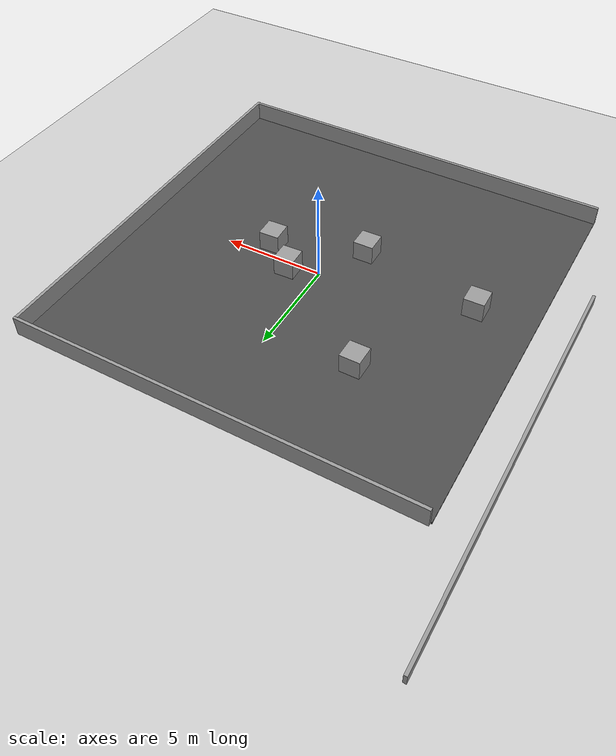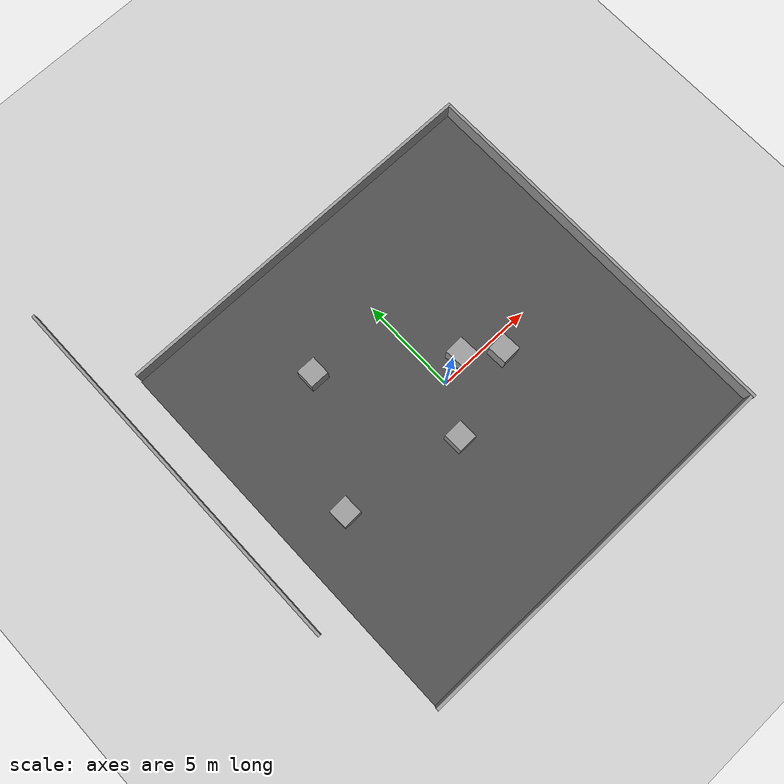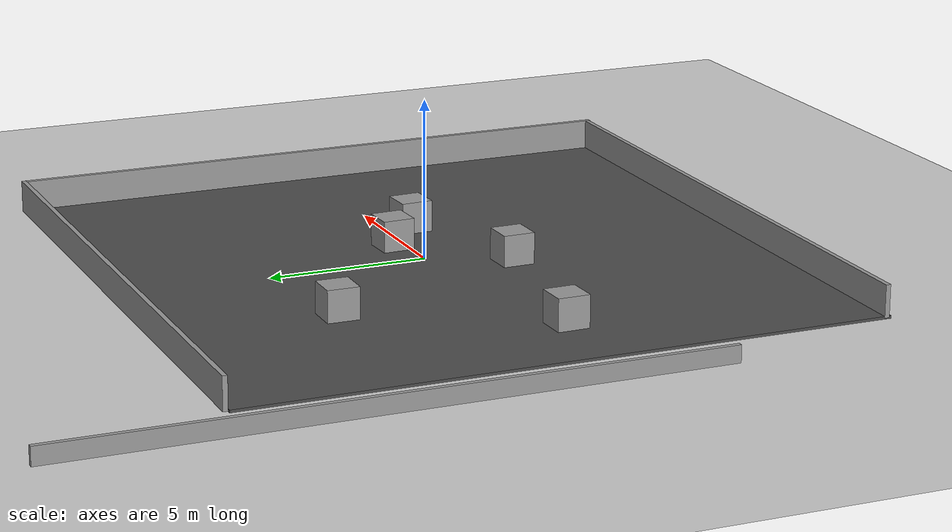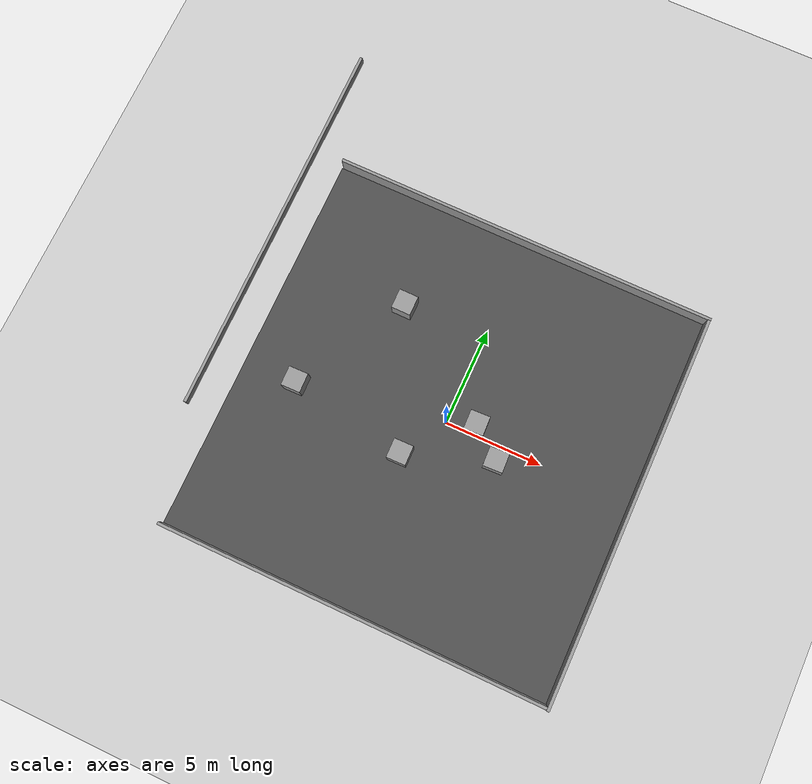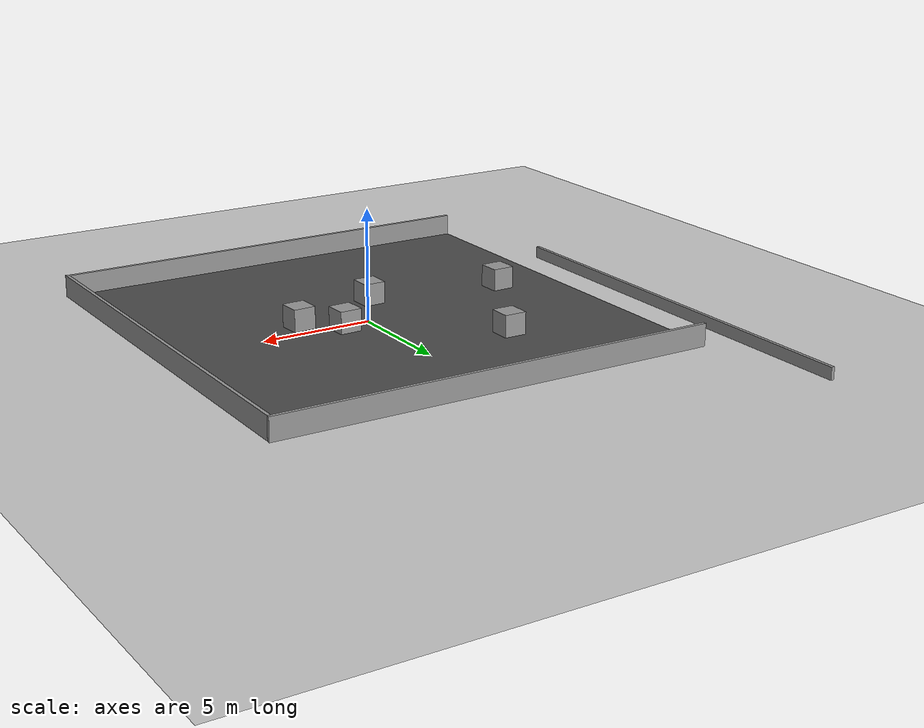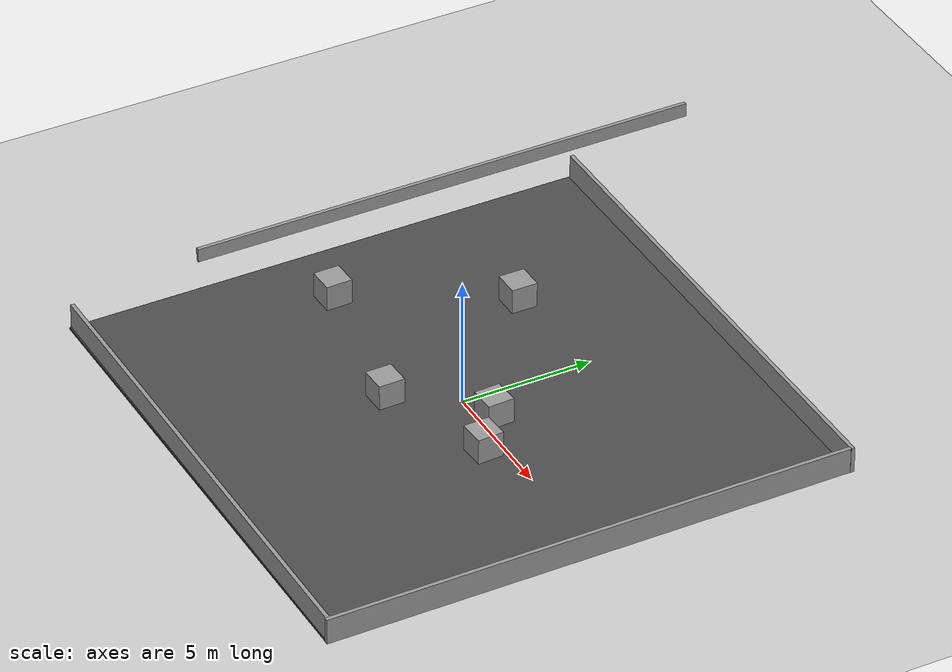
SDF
<sdf version="1.6">
 <world name="default">
  <light name="sun" type="directional">
   <pose>0 0 10 0 -0 0</pose>
   <diffuse>0.8 0.8 0.8 1</diffuse>
   <specular>0.2 0.2 0.2 1</specular>
   <attenuation>
    <range>1000</range>
    <constant>0.9</constant>
    <linear>0.01</linear>
    <quadratic>0.001</quadratic>
   </attenuation>
   <direction>-0.5 0.1 -0.9</direction>
  </light>
  <model name="Wall_01">
   <pose>-5.61799 -1.72271 0 0 0.000841 0</pose>
   <static>1</static>
   <link name="Wall_0">
    <collision name="Wall_0_Collision">
     <geometry><box><size>20 0.15 1</size></box></geometry>
     <pose>-5.61799 -1.72271 0 0 0.000841 0</pose>
    </collision>
    <visual name="Wall_0_Visual">
     <pose>-5.61799 -1.72271 0 0 0.000841 0</pose>
     <geometry><box><size>20 0.15 1</size></box></geometry>
     <material>
      <script><uri>file://media/materials/scripts/gazebo.material</uri><name>Gazebo/Grey</name></script>
      <ambient>1 1 1 1</ambient>
     </material>
    </visual>
    <pose>-4.6 1.725 0 0 0 -1.5708</pose>
   </link>
  </model>
  <model name="ground_plane">
   <static>1</static>
   <link name="link">
    <collision name="collision">
     <geometry><plane><normal>0 0 1</normal><size>100 100</size></plane></geometry>
     <surface><friction><ode><mu>100</mu><mu2>50</mu2></ode></friction></surface>
    </collision>
    <visual name="visual">
     <cast_shadows>0</cast_shadows>
     <geometry><plane><normal>0 0 1</normal><size>100 100</size></plane></geometry>
     <material>
      <script><uri>file://media/materials/scripts/gazebo.material</uri><name>Gazebo/Grey</name></script>
     </material>
    </visual>
    <velocity_decay><linear>0</linear><angular>0</angular></velocity_decay>
   </link>
  </model>
  <physics name="default_physics" default="0" type="ode">
   <max_step_size>0.01</max_step_size>
   <real_time_factor>1</real_time_factor>
   <real_time_update_rate>100</real_time_update_rate>
  </physics>
  <scene><ambient>0.4 0.4 0.4 1</ambient><background>0.7 0.7 0.7 1</background><shadows>1</shadows></scene>
  <model name="asphalt_plane">
   <static>1</static>
   <link name="link">
    <collision name="collision"><geometry><box><size>20 20 0.1</size></box></geometry></collision>
    <visual name="visual">
     <cast_shadows>0</cast_shadows>
     <geometry><box><size>20 20 0.1</size></box></geometry>
     <material>
      <script>
       <uri>model://asphalt_plane/materials/scripts</uri>
       <uri>model://asphalt_plane/materials/textures</uri>
       <name>vrc/asphalt</name>
      </script>
     </material>
    </visual>
    <velocity_decay><linear>0</linear><angular>0</angular></velocity_decay>
   </link>
   <pose>-0.299858 -0.177184 0 0 -0 0</pose>
  </model>
  <gravity>0 0 -9.8</gravity>
  <magnetic_field>6e-06 2.3e-05 -4.2e-05</magnetic_field>
  <atmosphere type="adiabatic"/>
  <spherical_coordinates>
   <surface_model>EARTH_WGS84</surface_model>
   <latitude_deg>0</latitude_deg>
   <longitude_deg>0</longitude_deg>
   <elevation>0</elevation>
   <heading_deg>0</heading_deg>
  </spherical_coordinates>
  <model name="unit_box">
   <pose>-1.37096 -2.30474 0.539033 2.2e-05 -2.5e-05 0.0166</pose>
   <link name="link">
    <inertial>
     <mass>1</mass>
     <inertia>
      <ixx>0.166667</ixx>
      <ixy>0</ixy>
      <ixz>0</ixz>
      <iyy>0.166667</iyy>
      <iyz>0</iyz>
      <izz>0.166667</izz>
     </inertia>
    </inertial>
    <collision name="collision"><geometry><box><size>1 1 1</size></box></geometry></collision>
    <visual name="visual">
     <geometry><box><size>1 1 1</size></box></geometry>
     <material>
      <script><name>Gazebo/Grey</name><uri>file://media/materials/scripts/gazebo.material</uri></script>
     </material>
    </visual>
   </link>
   <plugin name="random" filename="libvelset.so">
    <link>link</link>
    <initial_velocity>0 0.5 0</initial_velocity>
    <velocity_factor>0.5</velocity_factor>
    <update_period>5</update_period>
    <min_x>-10</min_x>
    <max_x>10</max_x>
    <min_y>-10</min_y>
    <max_y>10</max_y>
    <min_z>-1</min_z>
    <max_z>-1</max_z>
   </plugin>
  </model>
  <model name="Wall_01_clone">
   <static>1</static>
   <link name="Wall_0">
    <collision name="Wall_0_Collision">
     <geometry><box><size>20 0.15 1</size></box></geometry>
     <pose>0 0 0.5 0 -0 0</pose>
    </collision>
    <visual name="Wall_0_Visual">
     <pose>0 0 0.5 0 -0 0</pose>
     <geometry><box><size>20 0.15 1</size></box></geometry>
     <material>
      <script><uri>file://media/materials/scripts/gazebo.material</uri><name>Gazebo/Grey</name></script>
      <ambient>1 1 1 1</ambient>
     </material>
    </visual>
    <pose>-4.6 1.725 0 0 0 -1.5708</pose>
   </link>
   <pose>-1.98196 5.28709 0 0 0 -1.57382</pose>
  </model>
  <model name="Wall_01_clone_0">
   <static>1</static>
   <link name="Wall_0">
    <collision name="Wall_0_Collision">
     <geometry><box><size>20 0.15 1</size></box></geometry>
     <pose>0 0 0.5 0 -0 0</pose>
    </collision>
    <visual name="Wall_0_Visual">
     <pose>0 0 0.5 0 -0 0</pose>
     <geometry><box><size>20 0.15 1</size></box></geometry>
     <material>
      <script><uri>file://media/materials/scripts/gazebo.material</uri><name>Gazebo/Grey</name></script>
      <ambient>1 1 1 1</ambient>
     </material>
    </visual>
    <pose>-4.6 1.725 0 0 0 -1.5708</pose>
   </link>
   <pose>14.2708 -1.93121 0 0 0.000841 0</pose>
  </model>
  <model name="Wall_01_clone_clone">
   <static>1</static>
   <link name="Wall_0">
    <collision name="Wall_0_Collision">
     <geometry><box><size>20 0.15 1</size></box></geometry>
     <pose>0 0 0.5 0 -0 0</pose>
    </collision>
    <visual name="Wall_0_Visual">
     <pose>0 0 0.5 0 -0 0</pose>
     <geometry><box><size>20 0.15 1</size></box></geometry>
     <material>
      <script><uri>file://media/materials/scripts/gazebo.material</uri><name>Gazebo/Grey</name></script>
      <ambient>1 1 1 1</ambient>
     </material>
    </visual>
    <pose>-4.6 1.725 0 0 0 -1.5708</pose>
   </link>
   <pose>-2.04393 -14.665 0 0 0 -1.57382</pose>
  </model>
  <model name="unit_box_clone">
   <pose>-4.24548 4.4631 0.539039 3.4e-05 -0 -0.005976</pose>
   <link name="link">
    <inertial>
     <mass>1</mass>
     <inertia>
      <ixx>0.166667</ixx>
      <ixy>0</ixy>
      <ixz>0</ixz>
      <iyy>0.166667</iyy>
      <iyz>0</iyz>
      <izz>0.166667</izz>
     </inertia>
    </inertial>
    <collision name="collision"><geometry><box><size>1 1 1</size></box></geometry></collision>
    <visual name="visual">
     <geometry><box><size>1 1 1</size></box></geometry>
     <material>
      <script><name>Gazebo/Grey</name><uri>file://media/materials/scripts/gazebo.material</uri></script>
     </material>
    </visual>
   </link>
   <plugin name="random" filename="libvelset.so">
    <link>link</link>
    <initial_velocity>0 0.5 0</initial_velocity>
    <velocity_factor>0.5</velocity_factor>
    <update_period>5</update_period>
    <min_x>-10</min_x>
    <max_x>10</max_x>
    <min_y>-10</min_y>
    <max_y>10</max_y>
    <min_z>-1</min_z>
    <max_z>-1</max_z>
   </plugin>
  </model>
  <model name="unit_box_clone_0">
   <pose>1.40318 0.482019 0.539031 8.2e-05 -0 0.0421</pose>
   <link name="link">
    <inertial>
     <mass>1</mass>
     <inertia>
      <ixx>0.166667</ixx>
      <ixy>0</ixy>
      <ixz>0</ixz>
      <iyy>0.166667</iyy>
      <iyz>0</iyz>
      <izz>0.166667</izz>
     </inertia>
    </inertial>
    <collision name="collision"><geometry><box><size>1 1 1</size></box></geometry></collision>
    <visual name="visual">
     <geometry><box><size>1 1 1</size></box></geometry>
     <material>
      <script><name>Gazebo/Grey</name><uri>file://media/materials/scripts/gazebo.material</uri></script>
     </material>
    </visual>
   </link>
   <plugin name="random" filename="libvelset.so">
    <link>link</link>
    <initial_velocity>0 0.5 0</initial_velocity>
    <velocity_factor>0.5</velocity_factor>
    <update_period>5</update_period>
    <min_x>-10</min_x>
    <max_x>10</max_x>
    <min_y>-10</min_y>
    <max_y>10</max_y>
    <min_z>-1</min_z>
    <max_z>-1</max_z>
   </plugin>
  </model>
  <model name="unit_box_clone_clone">
   <pose>-7.46873 -1.23112 0.548423 -1.1e-05 0.003204 0.020826</pose>
   <link name="link">
    <inertial>
     <mass>1</mass>
     <inertia>
      <ixx>0.166667</ixx>
      <ixy>0</ixy>
      <ixz>0</ixz>
      <iyy>0.166667</iyy>
      <iyz>0</iyz>
      <izz>0.166667</izz>
     </inertia>
    </inertial>
    <collision name="collision"><geometry><box><size>1 1 1</size></box></geometry></collision>
    <visual name="visual">
     <geometry><box><size>1 1 1</size></box></geometry>
     <material>
      <script><name>Gazebo/Grey</name><uri>file://media/materials/scripts/gazebo.material</uri></script>
     </material>
    </visual>
   </link>
   <plugin name="random" filename="libvelset.so">
    <link>link</link>
    <initial_velocity>0 0.5 0</initial_velocity>
    <velocity_factor>0.5</velocity_factor>
    <update_period>5</update_period>
    <min_x>-10</min_x>
    <max_x>10</max_x>
    <min_y>-10</min_y>
    <max_y>10</max_y>
    <min_z>-1</min_z>
    <max_z>-1</max_z>
   </plugin>
  </model>
  <model name="unit_box_clone_clone_clone">
   <pose>2.95117 -0.751569 0.549754 0.000533 -1.1e-05 0.046</pose>
   <link name="link">
    <inertial>
     <mass>1</mass>
     <inertia>
      <ixx>0.166667</ixx>
      <ixy>0</ixy>
      <ixz>0</ixz>
      <iyy>0.166667</iyy>
      <iyz>0</iyz>
      <izz>0.166667</izz>
     </inertia>
    </inertial>
    <collision name="collision"><geometry><box><size>1 1 1</size></box></geometry></collision>
    <visual name="visual">
     <geometry><box><size>1 1 1</size></box></geometry>
     <material>
      <script><name>Gazebo/Grey</name><uri>file://media/materials/scripts/gazebo.material</uri></script>
     </material>
    </visual>
   </link>
   <plugin name="random" filename="libvelset.so">
    <link>link</link>
    <initial_velocity>0 0.5 0</initial_velocity>
    <velocity_factor>0.5</velocity_factor>
    <update_period>5</update_period>
    <min_x>-10</min_x>
    <max_x>10</max_x>
    <min_y>-10</min_y>
    <max_y>10</max_y>
    <min_z>-1</min_z>
    <max_z>-1</max_z>
   </plugin>
  </model>
 </world>
</sdf>
